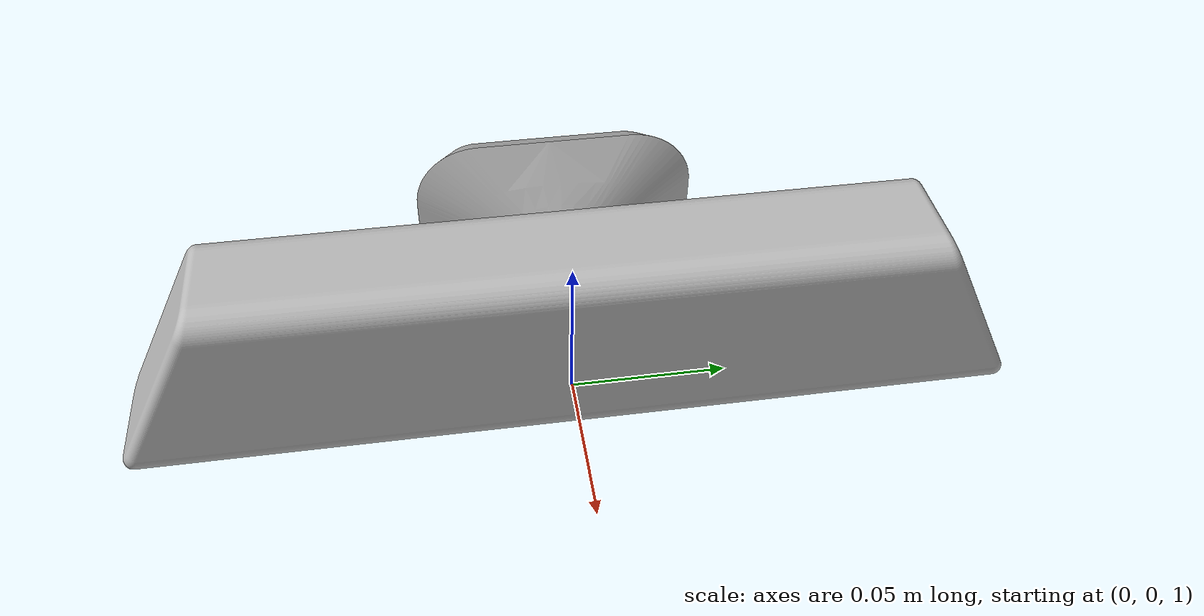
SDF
<?xml version="1.0" ?>
<sdf version="1.5">
  <model name="kinect_ros">
    <static>true</static>
    <pose>0 0 1 0 1.5707 0</pose>
    <link name="link">
      <inertial>
        <mass>0.1</mass>
      </inertial>
      <collision name="collision">
        <geometry>
          <box>
            <size>0.001000 0.001000 1</size>
          </box>
        </geometry>
      </collision>
      <visual name="visual">
        <geometry>
          <mesh>
            <uri>model://kinect/meshes/kinect.dae</uri>
          </mesh>
        </geometry>
      </visual>
      <sensor name="camera" type="depth">
        <update_rate>20</update_rate>
        <camera>
          <horizontal_fov>1.047198</horizontal_fov>
          <image>
            <width>640</width>
            <height>480</height>
            <format>R8G8B8</format>
          </image>
          <clip>
            <near>0.05</near>
            <far>3</far>
          </clip>
        </camera>
        <plugin name="camera_controller" filename="libgazebo_ros_openni_kinect.so">
          <baseline>0.2</baseline>
          <alwaysOn>true</alwaysOn>
          <updateRate>1.0</updateRate>
          <cameraName>camera_ir</cameraName>
          <imageTopicName>/camera/color/image_raw</imageTopicName>
          <cameraInfoTopicName>/camera/color/camera_info</cameraInfoTopicName>
          <depthImageTopicName>/camera/depth/image_raw</depthImageTopicName>
          <depthImageInfoTopicName>/camera/depth/camera_info</depthImageInfoTopicName>
          <pointCloudTopicName>/camera/depth/points</pointCloudTopicName>
          <frameName>base_link</frameName>
          <pointCloudCutoff>0.5</pointCloudCutoff>
          <pointCloudCutoffMax>3.0</pointCloudCutoffMax>
          <distortionK1>0.00000001</distortionK1>
          <distortionK2>0.00000001</distortionK2>
          <distortionK3>0.00000001</distortionK3>
          <distortionT1>0.00000001</distortionT1>
          <distortionT2>0.00000001</distortionT2>
          <CxPrime>0</CxPrime>
          <Cx>0</Cx>
          <Cy>0</Cy>
          <focalLength>554.254691</focalLength>
          <hackBaseline>0</hackBaseline>
        </plugin>
      </sensor>
    </link>
  </model>
</sdf>
